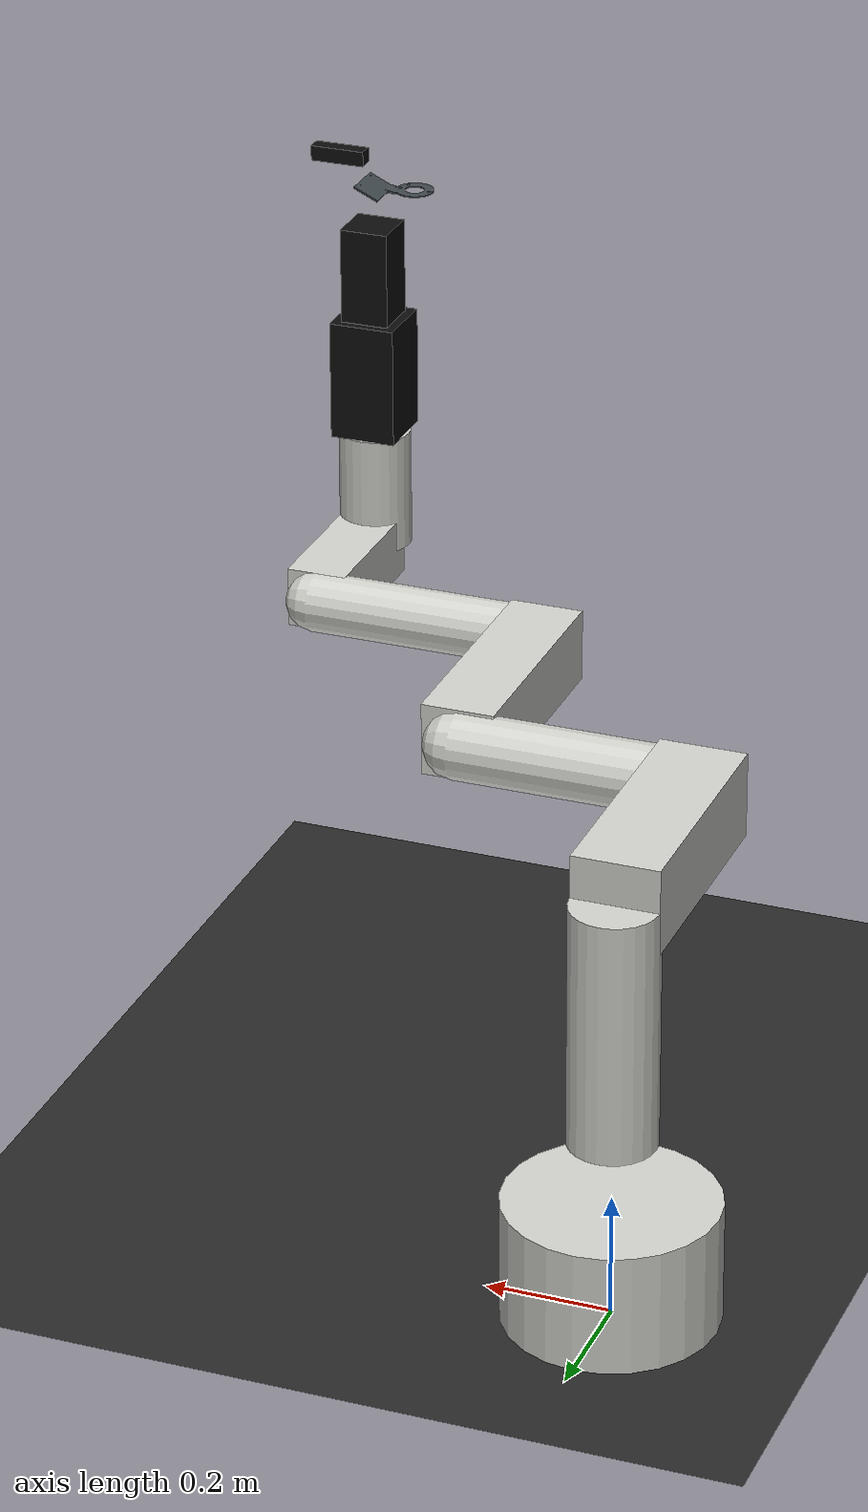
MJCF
<mujoco model="fr3_d435i_preview"><visual><global offwidth="1000" offheight="800"/></visual>
  <compiler angle="radian" meshdir="../models"/>
  <option gravity="0 0 -9.81"/>
  <asset>
    <mesh name="wrist_mount" file="FR3_D435i_mount.obj" scale="0.001 0.001 0.001"/>
    <material name="white" rgba="0.82 0.82 0.80 1"/><material name="dark" rgba="0.05 0.05 0.05 1"/><material name="mount" rgba="0.25 0.28 0.30 1"/><material name="glass" rgba="0.05 0.25 0.35 1"/>
  </asset>
  <worldbody><light name="key" pos="1 -1 2" dir="-1 1 -1" diffuse="1 1 1" specular="0.4 0.4 0.4"/><light name="fill" pos="-1 -1 1" dir="1 1 -0.5" diffuse="0.6 0.6 0.6"/>
    <geom type="plane" size="2 2 .01" rgba="0.16 0.16 0.16 1"/>
    <body name="base" pos="0 0 .1"><geom type="cylinder" size=".17 .1" material="white"/>
      <body name="link1" pos="0 0 .2"><joint name="j1" type="hinge" axis="0 0 1"/><geom type="cylinder" fromto="0 0 0 0 0 .4" size=".07" material="white"/>
        <body name="link2" pos="0 0 .4" euler="-1.5708 0 0"><joint name="j2" type="hinge" axis="0 0 1"/><geom type="box" pos="0 0 -.2" size=".07 .07 .2" material="white"/>
          <body name="link3" pos="0 0 -.4" euler="1.5708 0 0"><joint name="j3" type="hinge" axis="0 0 1"/><geom type="capsule" fromto="0 0 0 .4 0 0" size=".055" material="white"/>
            <body name="link4" pos=".4 0 0" euler="1.5708 0 0"><joint name="j4" type="hinge" axis="0 0 1"/><geom type="box" pos="0 0 .2" size=".06 .06 .2" material="white"/>
              <body name="link5" pos="0 0 .4" euler="-1.5708 0 0"><joint name="j5" type="hinge" axis="0 0 1"/><geom type="capsule" fromto="0 0 0 .4 0 0" size=".05" material="white"/>
                <body name="link6" pos=".4 0 0" euler="1.5708 0 0"><joint name="j6" type="hinge" axis="0 0 1"/><geom type="box" pos="0 0 .13" size=".05 .05 .13" material="white"/>
                  <body name="link7" pos="0 0 .26" euler="-1.5708 0 0"><joint name="j7" type="hinge" axis="0 0 1"/><geom type="cylinder" pos="0 0 .1" size=".06 .1" material="white"/>
                    <body name="hand" pos="0 0 .2"><geom type="box" pos="0 0 .1" size=".055 .055 .1" material="dark"/>
                      <body name="gripper" pos="0 0 .2"><geom type="box" pos="0 0 .08" size=".04 .04 .08" material="dark"/>
                        <body name="mount" pos="0 0 .22"><geom type="mesh" mesh="wrist_mount" material="mount" pos="-.055 -.050 -.011"/>
                          <body name="d435i" pos=".055 0 .055"><geom type="box" size=".045 .0125 .0125" material="dark"/><geom type="cylinder" fromto=".045 -.013 0 .046 -.013 0" size=".004" material="glass"/>
                          </body>
                        </body>
                      </body>
                    </body>
                  </body>
                </body>
              </body>
            </body>
          </body>
        </body>
      </body>
    </body>
    <camera name="view" pos="2 -3 1.8" mode="targetbody" target="d435i"/>
  </worldbody>
</mujoco>
